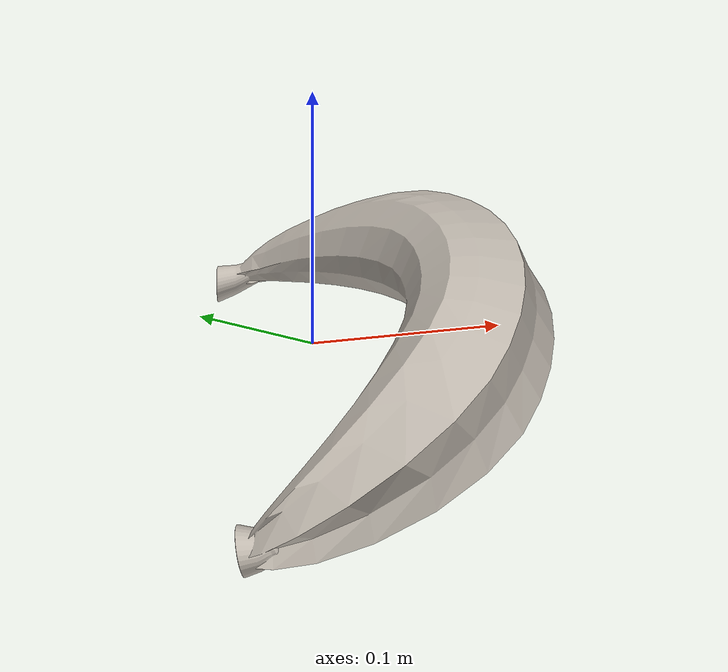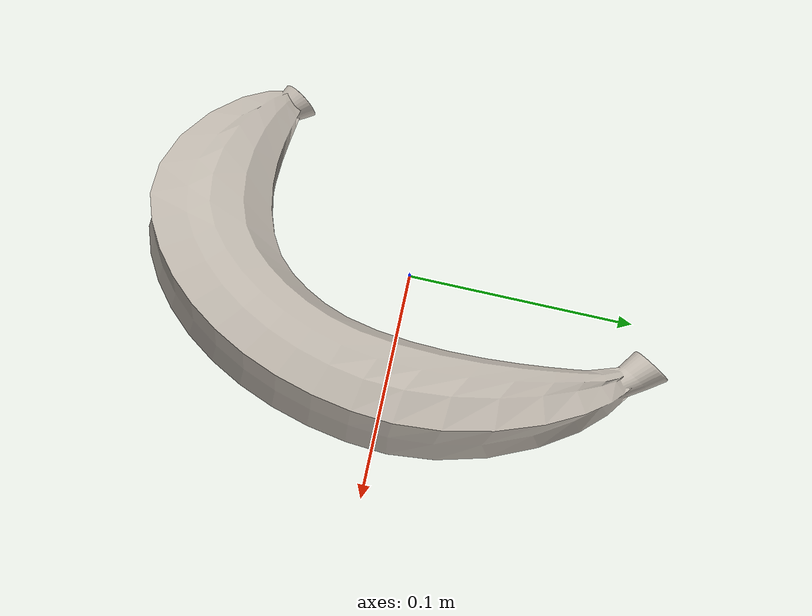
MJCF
<mujoco model="banana_4eb3ba34">
  <compiler angle="radian"/>
  <asset>
    <texture type="2d" name="banana_4eb3ba34_tex" file="banana_4eb3ba34_visual_0.png"/>
    <material name="banana_4eb3ba34_mat" texture="banana_4eb3ba34_tex"/>
    <mesh name="banana_4eb3ba34_visual" content_type="model/obj" file="banana_4eb3ba34_visual.obj" scale="-1 1.19032 1"/>
    <mesh name="banana_4eb3ba34_c0" content_type="model/obj" file="banana_4eb3ba34_c0.obj" scale="-1 1.19032 1"/>
    <mesh name="banana_4eb3ba34_c1" content_type="model/obj" file="banana_4eb3ba34_c1.obj" scale="-1 1.19032 1"/>
    <mesh name="banana_4eb3ba34_c2" content_type="model/obj" file="banana_4eb3ba34_c2.obj" scale="-1 1.19032 1"/>
    <mesh name="banana_4eb3ba34_c3" content_type="model/obj" file="banana_4eb3ba34_c3.obj" scale="-1 1.19032 1"/>
    <mesh name="banana_4eb3ba34_c4" content_type="model/obj" file="banana_4eb3ba34_c4.obj" scale="-1 1.19032 1"/>
  </asset>
  <worldbody>
    <body name="banana_4eb3ba34">
      <freejoint/>
      <geom name="banana_4eb3ba34_visual" type="mesh" mesh="banana_4eb3ba34_visual" mass="1e-8" contype="0" conaffinity="0" group="2" material="banana_4eb3ba34_mat"/>
      <geom name="banana_4eb3ba34_c0" type="mesh" mesh="banana_4eb3ba34_c0" group="3" density="291.797" friction="0.9 0.05 0.005" condim="4" rgba="0.4 0.5 0.9 0.35"/>
      <geom name="banana_4eb3ba34_c1" type="mesh" mesh="banana_4eb3ba34_c1" group="3" density="291.797" friction="0.9 0.05 0.005" condim="4" rgba="0.4 0.5 0.9 0.35"/>
      <geom name="banana_4eb3ba34_c2" type="mesh" mesh="banana_4eb3ba34_c2" group="3" density="291.797" friction="0.9 0.05 0.005" condim="4" rgba="0.4 0.5 0.9 0.35"/>
      <geom name="banana_4eb3ba34_c3" type="mesh" mesh="banana_4eb3ba34_c3" group="3" density="291.797" friction="0.9 0.05 0.005" condim="4" rgba="0.4 0.5 0.9 0.35"/>
      <geom name="banana_4eb3ba34_c4" type="mesh" mesh="banana_4eb3ba34_c4" group="3" density="291.797" friction="0.9 0.05 0.005" condim="4" rgba="0.4 0.5 0.9 0.35"/>
    </body>
  </worldbody>
</mujoco>
